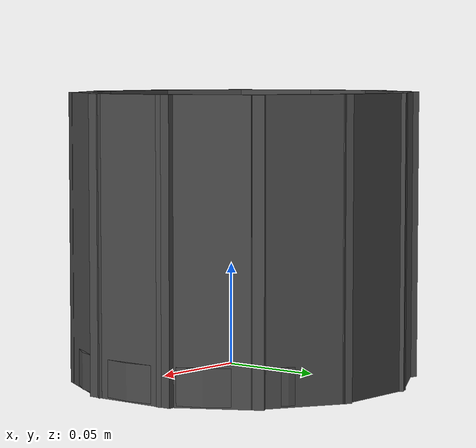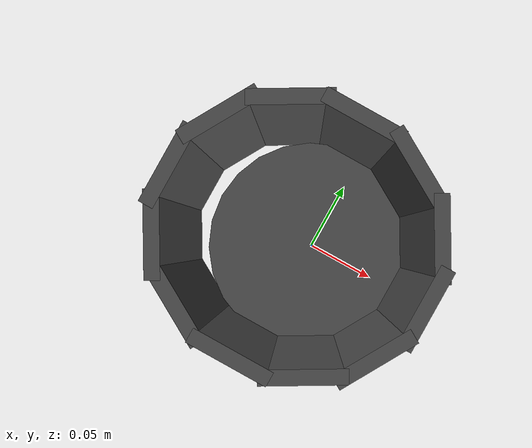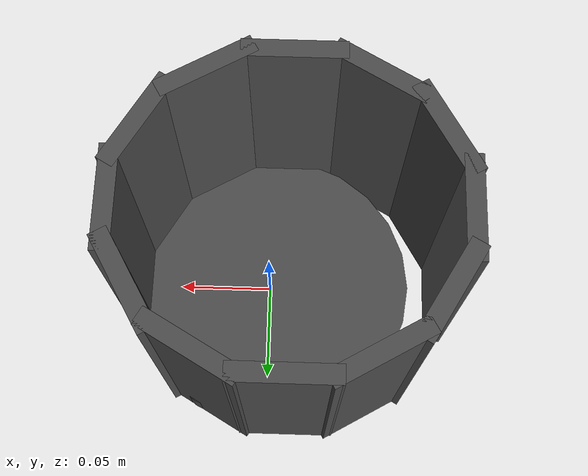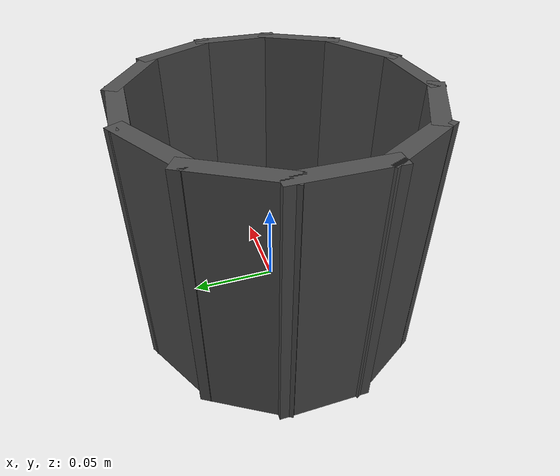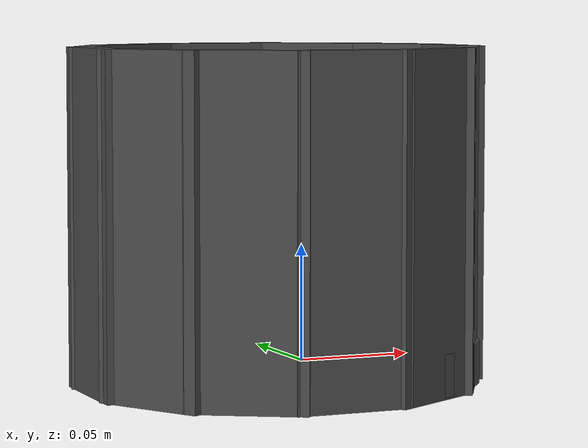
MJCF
<mujoco model="big_mug">
    <include file="../../common.xml"/>
    <worldbody>
        <body name="object_entity" pos="0.0 0.0 0.06">
            <joint name="OBJTx" pos="0 0 0" axis="1 0 0" type="slide" class="freejoint" />
            <joint name="OBJTy" pos="0 0 0" axis="0 1 0" type="slide" class="freejoint" />
            <joint name="OBJTz" pos="0 0 0" axis="0 0 1" type="slide" class="freejoint" />
            <joint name="OBJRx" pos="0 0 0" axis="1 0 0" class="freejoint" />
            <joint name="OBJRy" pos="0 0 0" axis="0 1 0" class="freejoint" />
            <joint name="OBJRz" pos="0 0 0" axis="0 0 1" class="freejoint" />
            <geom type="box" name="entity_visual_0" class="object_visual" pos="-0.0108 -0.0756 0.0027" size="0.0252 0.0045000000000000005 0.07200000000000001" quat="1.0 0.0 0.0 0.0" rgba="0.3 0.3 0.3 1" />
            <geom type="box" name="entity_contact_0" class="object_contact" pos="-0.0108 -0.0756 0.0027" size="0.0252 0.0045000000000000005 0.07200000000000001" quat="1.0 0.0 0.0 0.0" mass="0.5" />
            <geom type="box" name="entity_visual_1" class="object_visual" pos="0.02969999999999999 -0.06547152052610357 0.0027" size="0.0252 0.0045000000000000005 0.07200000000000001" quat="0.9659258262890683 0.0 0.0 0.25881904510252074" rgba="0.3 0.3 0.3 1" />
            <geom type="box" name="entity_contact_1" class="object_contact" pos="0.02969999999999999 -0.06547152052610357 0.0027" size="0.0252 0.0045000000000000005 0.07200000000000001" quat="0.9659258262890683 0.0 0.0 0.25881904510252074" mass="0.5" />
            <geom type="box" name="entity_visual_2" class="object_visual" pos="0.059348057706539524 -0.03780000000000001 0.0027" size="0.0252 0.0045000000000000005 0.07200000000000001" quat="0.8660254037844387 0.0 0.0 0.49999999999999994" rgba="0.3 0.3 0.3 1" />
            <geom type="box" name="entity_contact_2" class="object_contact" pos="0.059348057706539524 -0.03780000000000001 0.0027" size="0.0252 0.0045000000000000005 0.07200000000000001" quat="0.8660254037844387 0.0 0.0 0.49999999999999994" mass="0.5" />
            <geom type="box" name="entity_visual_3" class="object_visual" pos="0.0702 -4.629164900776995e-18 0.0027" size="0.0252 0.0045000000000000005 0.07200000000000001" quat="0.7071067811865476 0.0 0.0 0.7071067811865475" rgba="0.3 0.3 0.3 1" />
            <geom type="box" name="entity_contact_3" class="object_contact" pos="0.0702 -4.629164900776995e-18 0.0027" size="0.0252 0.0045000000000000005 0.07200000000000001" quat="0.7071067811865476 0.0 0.0 0.7071067811865475" mass="0.5" />
            <geom type="box" name="entity_visual_4" class="object_visual" pos="0.05934805770653954 0.037799999999999986 0.0027" size="0.0252 0.0045000000000000005 0.07200000000000001" quat="0.5000000000000001 0.0 0.0 0.8660254037844386" rgba="0.3 0.3 0.3 1" />
            <geom type="box" name="entity_contact_4" class="object_contact" pos="0.05934805770653954 0.037799999999999986 0.0027" size="0.0252 0.0045000000000000005 0.07200000000000001" quat="0.5000000000000001 0.0 0.0 0.8660254037844386" mass="0.5" />
            <geom type="box" name="entity_visual_5" class="object_visual" pos="0.02969999999999999 0.06547152052610357 0.0027" size="0.0252 0.0045000000000000005 0.07200000000000001" quat="0.25881904510252074 0.0 0.0 0.9659258262890683" rgba="0.3 0.3 0.3 1" />
            <geom type="box" name="entity_contact_5" class="object_contact" pos="0.02969999999999999 0.06547152052610357 0.0027" size="0.0252 0.0045000000000000005 0.07200000000000001" quat="0.25881904510252074 0.0 0.0 0.9659258262890683" mass="0.5" />
            <geom type="box" name="entity_visual_6" class="object_visual" pos="-0.010799999999999992 0.0756 0.0027" size="0.0252 0.0045000000000000005 0.07200000000000001" quat="6.123233995736766e-17 0.0 0.0 1.0" rgba="0.3 0.3 0.3 1" />
            <geom type="box" name="entity_contact_6" class="object_contact" pos="-0.010799999999999992 0.0756 0.0027" size="0.0252 0.0045000000000000005 0.07200000000000001" quat="6.123233995736766e-17 0.0 0.0 1.0" mass="0.5" />
            <geom type="box" name="entity_visual_7" class="object_visual" pos="-0.05130000000000001 0.06547152052610357 0.0027" size="0.0252 0.0045000000000000005 0.07200000000000001" quat="-0.25881904510252085 0.0 0.0 0.9659258262890683" rgba="0.3 0.3 0.3 1" />
            <geom type="box" name="entity_contact_7" class="object_contact" pos="-0.05130000000000001 0.06547152052610357 0.0027" size="0.0252 0.0045000000000000005 0.07200000000000001" quat="-0.25881904510252085 0.0 0.0 0.9659258262890683" mass="0.5" />
            <geom type="box" name="entity_visual_8" class="object_visual" pos="-0.08094805770653951 0.037800000000000035 0.0027" size="0.0252 0.0045000000000000005 0.07200000000000001" quat="-0.4999999999999998 0.0 0.0 0.8660254037844387" rgba="0.3 0.3 0.3 1" />
            <geom type="box" name="entity_contact_8" class="object_contact" pos="-0.08094805770653951 0.037800000000000035 0.0027" size="0.0252 0.0045000000000000005 0.07200000000000001" quat="-0.4999999999999998 0.0 0.0 0.8660254037844387" mass="0.5" />
            <geom type="box" name="entity_visual_9" class="object_visual" pos="-0.09179999999999999 1.3887494702330986e-17 0.0027" size="0.0252 0.0045000000000000005 0.07200000000000001" quat="-0.7071067811865475 0.0 0.0 0.7071067811865476" rgba="0.3 0.3 0.3 1" />
            <geom type="box" name="entity_contact_9" class="object_contact" pos="-0.09179999999999999 1.3887494702330986e-17 0.0027" size="0.0252 0.0045000000000000005 0.07200000000000001" quat="-0.7071067811865475 0.0 0.0 0.7071067811865476" mass="0.5" />
            <geom type="box" name="entity_visual_10" class="object_visual" pos="-0.08094805770653951 -0.03780000000000001 0.0027" size="0.0252 0.0045000000000000005 0.07200000000000001" quat="-0.8660254037844387 0.0 0.0 0.49999999999999994" rgba="0.3 0.3 0.3 1" />
            <geom type="box" name="entity_contact_10" class="object_contact" pos="-0.08094805770653951 -0.03780000000000001 0.0027" size="0.0252 0.0045000000000000005 0.07200000000000001" quat="-0.8660254037844387 0.0 0.0 0.49999999999999994" mass="0.5" />
            <geom type="box" name="entity_visual_11" class="object_visual" pos="-0.05130000000000003 -0.06547152052610354 0.0027" size="0.0252 0.0045000000000000005 0.07200000000000001" quat="-0.9659258262890682 0.0 0.0 0.258819045102521" rgba="0.3 0.3 0.3 1" />
            <geom type="box" name="entity_contact_11" class="object_contact" pos="-0.05130000000000003 -0.06547152052610354 0.0027" size="0.0252 0.0045000000000000005 0.07200000000000001" quat="-0.9659258262890682 0.0 0.0 0.258819045102521" mass="0.5" />
            <geom type="cylinder" name="entity_visual_12" class="object_visual" pos="0.0 0.0 -0.0594" size="0.07650000000000001 0.009000000000000001" rgba="0.3 0.3 0.3 1" />
            <geom type="cylinder" name="entity_contact_12" class="object_contact" pos="0.0 0.0 -0.0594" size="0.07650000000000001 0.009000000000000001" mass="0.5" />
        </body>
    </worldbody>
</mujoco>

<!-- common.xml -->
<mujoco>
    <compiler angle="radian" />

    <asset>
        <material name="MatObject" specular="0.75" shininess="0.1" reflectance="0.5" rgba="1.0 1.0 1.0 1" />
    </asset>

    <default>
        <joint limited="true" margin="0.01" armature="0.001" damping="0.05" frictionloss="0.001" />
        <geom friction="1 0.5 0.01" margin="0.0005" density="1250" />
        <site size="0.005 0 0" rgba="0.4 0.9 0.4 1" />
        <general ctrllimited="true" ctrlrange="-1 1" />
        <tendon limited="true" />

	<default class="object_visual">
	    <geom type="mesh" contype="0" conaffinity="0" mass="0" group="1" material="MatObject" />
	</default>

	<default class="object_contact">
	    <geom type="mesh" density="1250" condim="4" rgba="0 0 1 0" margin="0.003" solref="-6000 -300" />
	</default>

        <default class="freejoint">
            <joint limited="false" damping="0.0" />
        </default>
    </default>

    <visual>
        <!-- free camera attributes -->
        <global fovy="25" />
    </visual>
</mujoco>
